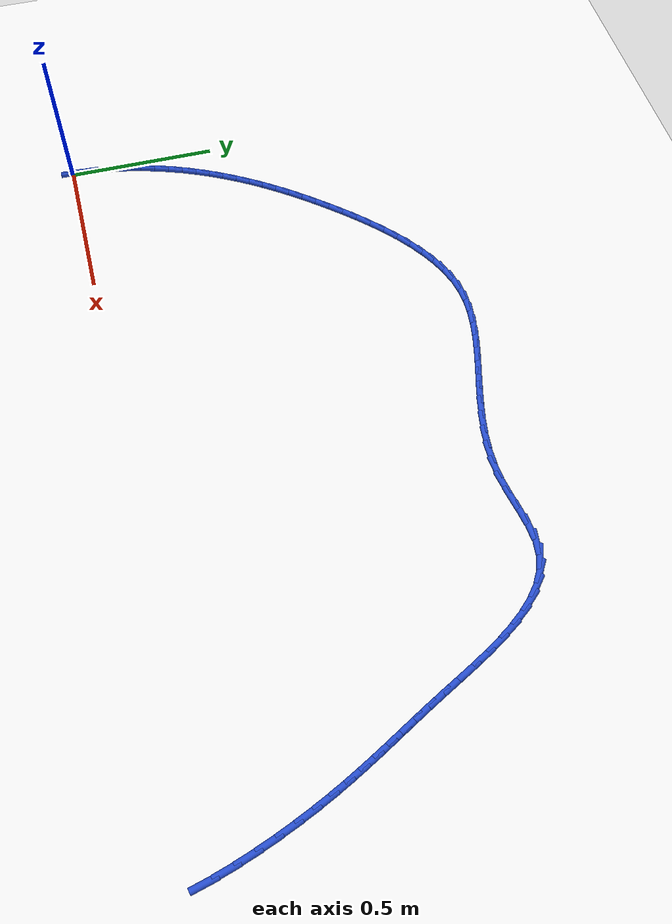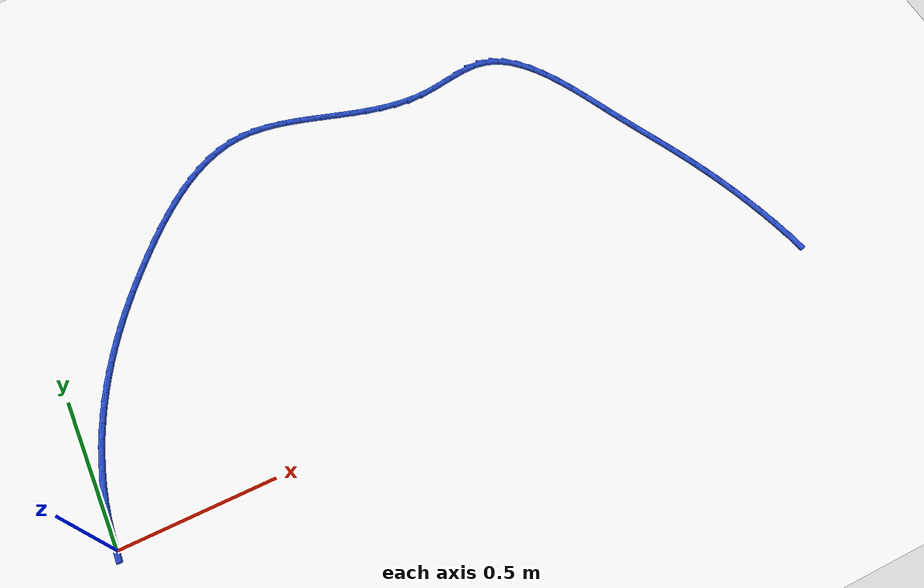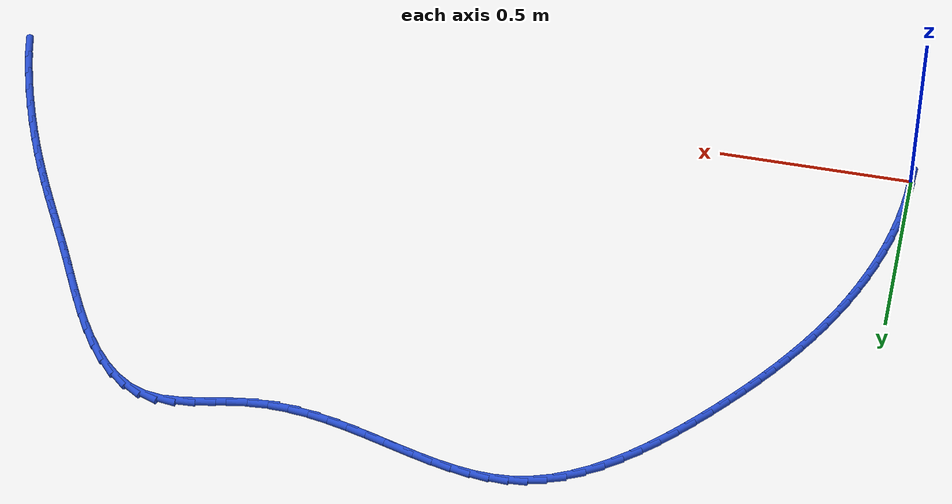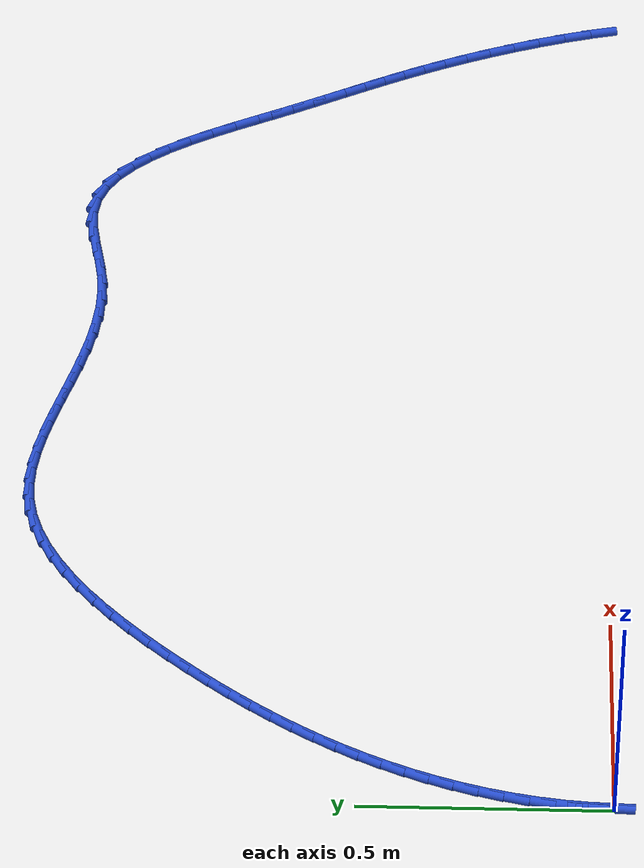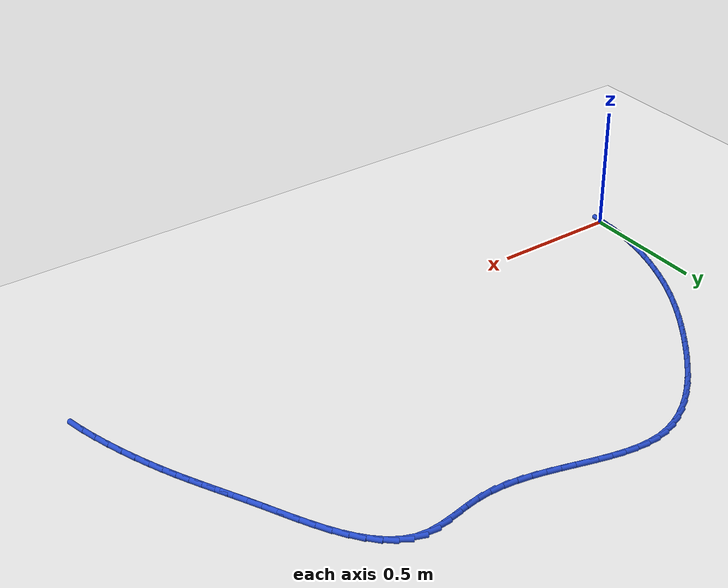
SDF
<sdf version="1.6">
 <world name="default">
  <model name="ground_plane">
   <static>1</static>
   <link name="link">
    <collision name="collision">
     <geometry><plane><normal>0 0 1</normal><size>100 100</size></plane></geometry>
     <surface><friction><ode><mu>100</mu><mu2>50</mu2></ode></friction></surface>
    </collision>
    <visual name="visual">
     <cast_shadows>0</cast_shadows>
     <geometry><plane><normal>0 0 1</normal><size>100 100</size></plane></geometry>
     <material>
      <script><uri>file://media/materials/scripts/gazebo.material</uri><name>Gazebo/WhiteGlow</name></script>
     </material>
    </visual>
   </link>
  </model>
  <model name="line">
   <link name="link_0">
    <pose>5.0306980803327406e-17 -2.7755575615628914e-17 0.01 0 1.57 1.5272388991508121</pose>
    <collision name="collision">
     <geometry><cylinder><radius>0.01</radius><length>0.08</length></cylinder></geometry>
    </collision>
    <visual name="visual">
     <material>
      <script><name>Gazebo/Blue</name><uri>file://media/materials/scripts/gazebo.material</uri></script>
     </material>
     <geometry><cylinder><radius>0.01</radius><length>0.08</length></cylinder></geometry>
    </visual>
   </link>
   <link name="link_1">
    <pose>0.002223918584798443 0.05102486726776829 0.01 0 1.57 1.4775595436881013</pose>
    <collision name="collision">
     <geometry><cylinder><radius>0.01</radius><length>0.08</length></cylinder></geometry>
    </collision>
    <visual name="visual">
     <material>
      <script><name>Gazebo/Blue</name><uri>file://media/materials/scripts/gazebo.material</uri></script>
     </material>
     <geometry><cylinder><radius>0.01</radius><length>0.08</length></cylinder></geometry>
    </visual>
   </link>
   <link name="link_2">
    <pose>0.006962776242531 0.10170355599268953 0.01 0 1.57 1.4298396145848786</pose>
    <collision name="collision">
     <geometry><cylinder><radius>0.01</radius><length>0.08</length></cylinder></geometry>
    </collision>
    <visual name="visual">
     <material>
      <script><name>Gazebo/Blue</name><uri>file://media/materials/scripts/gazebo.material</uri></script>
     </material>
     <geometry><cylinder><radius>0.01</radius><length>0.08</length></cylinder></geometry>
    </visual>
   </link>
   <link name="link_3">
    <pose>0.014092496720489735 0.15194903952423786 0.01 0 1.57 1.3840301126188765</pose>
    <collision name="collision">
     <geometry><cylinder><radius>0.01</radius><length>0.08</length></cylinder></geometry>
    </collision>
    <visual name="visual">
     <material>
      <script><name>Gazebo/Blue</name><uri>file://media/materials/scripts/gazebo.material</uri></script>
     </material>
     <geometry><cylinder><radius>0.01</radius><length>0.08</length></cylinder></geometry>
    </visual>
   </link>
   <link name="link_4">
    <pose>0.02348900376596664 0.2016742912118874 0.01 0 1.57 1.3400521082369103</pose>
    <collision name="collision">
     <geometry><cylinder><radius>0.01</radius><length>0.08</length></cylinder></geometry>
    </collision>
    <visual name="visual">
     <material>
      <script><name>Gazebo/Blue</name><uri>file://media/materials/scripts/gazebo.material</uri></script>
     </material>
     <geometry><cylinder><radius>0.01</radius><length>0.08</length></cylinder></geometry>
    </visual>
   </link>
   <link name="link_5">
    <pose>0.03502822112625369 0.25079228440511236 0.01 0 1.57 1.2978026913553944</pose>
    <collision name="collision">
     <geometry><cylinder><radius>0.01</radius><length>0.08</length></cylinder></geometry>
    </collision>
    <visual name="visual">
     <material>
      <script><name>Gazebo/Blue</name><uri>file://media/materials/scripts/gazebo.material</uri></script>
     </material>
     <geometry><cylinder><radius>0.01</radius><length>0.08</length></cylinder></geometry>
    </visual>
   </link>
   <link name="link_6">
    <pose>0.04858607254864292 0.2992159924533869 0.01 0 1.57 1.2571600773190508</pose>
    <collision name="collision">
     <geometry><cylinder><radius>0.01</radius><length>0.08</length></cylinder></geometry>
    </collision>
    <visual name="visual">
     <material>
      <script><name>Gazebo/Blue</name><uri>file://media/materials/scripts/gazebo.material</uri></script>
     </material>
     <geometry><cylinder><radius>0.01</radius><length>0.08</length></cylinder></geometry>
    </visual>
   </link>
   <link name="link_7">
    <pose>0.06403848178042629 0.3468583887061852 0.01 0 1.57 1.2179877338784888</pose>
    <collision name="collision">
     <geometry><cylinder><radius>0.01</radius><length>0.08</length></cylinder></geometry>
    </collision>
    <visual name="visual">
     <material>
      <script><name>Gazebo/Blue</name><uri>file://media/materials/scripts/gazebo.material</uri></script>
     </material>
     <geometry><cylinder><radius>0.01</radius><length>0.08</length></cylinder></geometry>
    </visual>
   </link>
   <link name="link_8">
    <pose>0.08126137256889585 0.39363244651298135 0.01 0 1.57 1.1801067135373107</pose>
    <collision name="collision">
     <geometry><cylinder><radius>0.01</radius><length>0.08</length></cylinder></geometry>
    </collision>
    <visual name="visual">
     <material>
      <script><name>Gazebo/Blue</name><uri>file://media/materials/scripts/gazebo.material</uri></script>
     </material>
     <geometry><cylinder><radius>0.01</radius><length>0.08</length></cylinder></geometry>
    </visual>
   </link>
   <link name="link_9">
    <pose>0.10013675700099565 0.4394619173120163 0.01 0 1.57 1.1431740605714313</pose>
    <collision name="collision">
     <geometry><cylinder><radius>0.01</radius><length>0.08</length></cylinder></geometry>
    </collision>
    <visual name="visual">
     <material>
      <script><name>Gazebo/Blue</name><uri>file://media/materials/scripts/gazebo.material</uri></script>
     </material>
     <geometry><cylinder><radius>0.01</radius><length>0.08</length></cylinder></geometry>
    </visual>
   </link>
   <link name="link_10">
    <pose>0.12060606583139054 0.48437574044359927 0.01 0 1.57 1.1072401756715553</pose>
    <collision name="collision">
     <geometry><cylinder><radius>0.01</radius><length>0.08</length></cylinder></geometry>
    </collision>
    <visual name="visual">
     <material>
      <script><name>Gazebo/Blue</name><uri>file://media/materials/scripts/gazebo.material</uri></script>
     </material>
     <geometry><cylinder><radius>0.01</radius><length>0.08</length></cylinder></geometry>
    </visual>
   </link>
   <link name="link_11">
    <pose>0.14264428056418202 0.5284622495946565 0.01 0 1.57 1.0725524328225868</pose>
    <collision name="collision">
     <geometry><cylinder><radius>0.01</radius><length>0.08</length></cylinder></geometry>
    </collision>
    <visual name="visual">
     <material>
      <script><name>Gazebo/Blue</name><uri>file://media/materials/scripts/gazebo.material</uri></script>
     </material>
     <geometry><cylinder><radius>0.01</radius><length>0.08</length></cylinder></geometry>
    </visual>
   </link>
   <link name="link_12">
    <pose>0.16622676152050464 0.5718104490657525 0.01 0 1.57 1.039331357504351</pose>
    <collision name="collision">
     <geometry><cylinder><radius>0.01</radius><length>0.08</length></cylinder></geometry>
    </collision>
    <visual name="visual">
     <material>
      <script><name>Gazebo/Blue</name><uri>file://media/materials/scripts/gazebo.material</uri></script>
     </material>
     <geometry><cylinder><radius>0.01</radius><length>0.08</length></cylinder></geometry>
    </visual>
   </link>
   <link name="link_13">
    <pose>0.19132886902149296 0.614509343157452 0.01 0 1.57 1.0077643335935016</pose>
    <collision name="collision">
     <geometry><cylinder><radius>0.01</radius><length>0.08</length></cylinder></geometry>
    </collision>
    <visual name="visual">
     <material>
      <script><name>Gazebo/Blue</name><uri>file://media/materials/scripts/gazebo.material</uri></script>
     </material>
     <geometry><cylinder><radius>0.01</radius><length>0.08</length></cylinder></geometry>
    </visual>
   </link>
   <link name="link_14">
    <pose>0.21792596338828174 0.6566479361703199 0.01 0 1.57 0.9780032792882845</pose>
    <collision name="collision">
     <geometry><cylinder><radius>0.01</radius><length>0.08</length></cylinder></geometry>
    </collision>
    <visual name="visual">
     <material>
      <script><name>Gazebo/Blue</name><uri>file://media/materials/scripts/gazebo.material</uri></script>
     </material>
     <geometry><cylinder><radius>0.01</radius><length>0.08</length></cylinder></geometry>
    </visual>
   </link>
   <link name="link_15">
    <pose>0.24599340494200544 0.6983152324049209 0.01 0 1.57 0.9501642488551912</pose>
    <collision name="collision">
     <geometry><cylinder><radius>0.01</radius><length>0.08</length></cylinder></geometry>
    </collision>
    <visual name="visual">
     <material>
      <script><name>Gazebo/Blue</name><uri>file://media/materials/scripts/gazebo.material</uri></script>
     </material>
     <geometry><cylinder><radius>0.01</radius><length>0.08</length></cylinder></geometry>
    </visual>
   </link>
   <link name="link_16">
    <pose>0.27550655400379875 0.73960023616182 0.01 0 1.57 0.9243286719294354</pose>
    <collision name="collision">
     <geometry><cylinder><radius>0.01</radius><length>0.08</length></cylinder></geometry>
    </collision>
    <visual name="visual">
     <material>
      <script><name>Gazebo/Blue</name><uri>file://media/materials/scripts/gazebo.material</uri></script>
     </material>
     <geometry><cylinder><radius>0.01</radius><length>0.08</length></cylinder></geometry>
    </visual>
   </link>
   <link name="link_17">
    <pose>0.3064407708947964 0.7805919517415821 0.01 0 1.57 0.9005458506365052</pose>
    <collision name="collision">
     <geometry><cylinder><radius>0.01</radius><length>0.08</length></cylinder></geometry>
    </collision>
    <visual name="visual">
     <material>
      <script><name>Gazebo/Blue</name><uri>file://media/materials/scripts/gazebo.material</uri></script>
     </material>
     <geometry><cylinder><radius>0.01</radius><length>0.08</length></cylinder></geometry>
    </visual>
   </link>
   <link name="link_18">
    <pose>0.33877141593613286 0.8213793834447715 0.01 0 1.57 0.8788363084535017</pose>
    <collision name="collision">
     <geometry><cylinder><radius>0.01</radius><length>0.08</length></cylinder></geometry>
    </collision>
    <visual name="visual">
     <material>
      <script><name>Gazebo/Blue</name><uri>file://media/materials/scripts/gazebo.material</uri></script>
     </material>
     <geometry><cylinder><radius>0.01</radius><length>0.08</length></cylinder></geometry>
    </visual>
   </link>
   <link name="link_19">
    <pose>0.3724738494489426 0.862051535571953 0.01 0 1.57 0.8582273358059296</pose>
    <collision name="collision">
     <geometry><cylinder><radius>0.01</radius><length>0.08</length></cylinder></geometry>
    </collision>
    <visual name="visual">
     <material>
      <script><name>Gazebo/Blue</name><uri>file://media/materials/scripts/gazebo.material</uri></script>
     </material>
     <geometry><cylinder><radius>0.01</radius><length>0.08</length></cylinder></geometry>
    </visual>
   </link>
   <link name="link_20">
    <pose>0.407519418088347 0.9026132783377154 0.01 0 1.57 0.8335239455667202</pose>
    <collision name="collision">
     <geometry><cylinder><radius>0.01</radius><length>0.08</length></cylinder></geometry>
    </collision>
    <visual name="visual">
     <material>
      <script><name>Gazebo/Blue</name><uri>file://media/materials/scripts/gazebo.material</uri></script>
     </material>
     <geometry><cylinder><radius>0.01</radius><length>0.08</length></cylinder></geometry>
    </visual>
   </link>
   <link name="link_21">
    <pose>0.44385849670834976 0.9426298730523538 0.01 0 1.57 0.8026250250646623</pose>
    <collision name="collision">
     <geometry><cylinder><radius>0.01</radius><length>0.08</length></cylinder></geometry>
    </collision>
    <visual name="visual">
     <material>
      <script><name>Gazebo/Blue</name><uri>file://media/materials/scripts/gazebo.material</uri></script>
     </material>
     <geometry><cylinder><radius>0.01</radius><length>0.08</length></cylinder></geometry>
    </visual>
   </link>
   <link name="link_22">
    <pose>0.48143463312846696 0.9815234733773062 0.01 0 1.57 0.7648076815260989</pose>
    <collision name="collision">
     <geometry><cylinder><radius>0.01</radius><length>0.08</length></cylinder></geometry>
    </collision>
    <visual name="visual">
     <material>
      <script><name>Gazebo/Blue</name><uri>file://media/materials/scripts/gazebo.material</uri></script>
     </material>
     <geometry><cylinder><radius>0.01</radius><length>0.08</length></cylinder></geometry>
    </visual>
   </link>
   <link name="link_23">
    <pose>0.5201913714729116 1.0187161555133943 0.01 0 1.57 0.7190865121437994</pose>
    <collision name="collision">
     <geometry><cylinder><radius>0.01</radius><length>0.08</length></cylinder></geometry>
    </collision>
    <visual name="visual">
     <material>
      <script><name>Gazebo/Blue</name><uri>file://media/materials/scripts/gazebo.material</uri></script>
     </material>
     <geometry><cylinder><radius>0.01</radius><length>0.08</length></cylinder></geometry>
    </visual>
   </link>
   <link name="link_24">
    <pose>0.5600722558658957 1.0536299956614397 0.01 0 1.57 0.6642031032543242</pose>
    <collision name="collision">
     <geometry><cylinder><radius>0.01</radius><length>0.08</length></cylinder></geometry>
    </collision>
    <visual name="visual">
     <material>
      <script><name>Gazebo/Blue</name><uri>file://media/materials/scripts/gazebo.material</uri></script>
     </material>
     <geometry><cylinder><radius>0.01</radius><length>0.08</length></cylinder></geometry>
    </visual>
   </link>
   <link name="link_25">
    <pose>0.601020830431632 1.0856870700222638 0.01 0 1.57 0.5986372614404099</pose>
    <collision name="collision">
     <geometry><cylinder><radius>0.01</radius><length>0.08</length></cylinder></geometry>
    </collision>
    <visual name="visual">
     <material>
      <script><name>Gazebo/Blue</name><uri>file://media/materials/scripts/gazebo.material</uri></script>
     </material>
     <geometry><cylinder><radius>0.01</radius><length>0.08</length></cylinder></geometry>
    </visual>
   </link>
   <link name="link_26">
    <pose>0.6429806392943327 1.114309454796688 0.01 0 1.57 0.5206756706613384</pose>
    <collision name="collision">
     <geometry><cylinder><radius>0.01</radius><length>0.08</length></cylinder></geometry>
    </collision>
    <visual name="visual">
     <material>
      <script><name>Gazebo/Blue</name><uri>file://media/materials/scripts/gazebo.material</uri></script>
     </material>
     <geometry><cylinder><radius>0.01</radius><length>0.08</length></cylinder></geometry>
    </visual>
   </link>
   <link name="link_27">
    <pose>0.6858952265782101 1.1389192261855339 0.01 0 1.57 0.42859819823669854</pose>
    <collision name="collision">
     <geometry><cylinder><radius>0.01</radius><length>0.08</length></cylinder></geometry>
    </collision>
    <visual name="visual">
     <material>
      <script><name>Gazebo/Blue</name><uri>file://media/materials/scripts/gazebo.material</uri></script>
     </material>
     <geometry><cylinder><radius>0.01</radius><length>0.08</length></cylinder></geometry>
    </visual>
   </link>
   <link name="link_28">
    <pose>0.7297081364074769 1.1589384603896227 0.01 0 1.57 0.32106207036278145</pose>
    <collision name="collision">
     <geometry><cylinder><radius>0.01</radius><length>0.08</length></cylinder></geometry>
    </collision>
    <visual name="visual">
     <material>
      <script><name>Gazebo/Blue</name><uri>file://media/materials/scripts/gazebo.material</uri></script>
     </material>
     <geometry><cylinder><radius>0.01</radius><length>0.08</length></cylinder></geometry>
    </visual>
   </link>
   <link name="link_29">
    <pose>0.7743629129063457 1.1737892336097768 0.01 0 1.57 0.19778036031494722</pose>
    <collision name="collision">
     <geometry><cylinder><radius>0.01</radius><length>0.08</length></cylinder></geometry>
    </collision>
    <visual name="visual">
     <material>
      <script><name>Gazebo/Blue</name><uri>file://media/materials/scripts/gazebo.material</uri></script>
     </material>
     <geometry><cylinder><radius>0.01</radius><length>0.08</length></cylinder></geometry>
    </visual>
   </link>
   <link name="link_30">
    <pose>0.8198031244990173 1.1828954621599586 0.01 0 1.57 0.06905127401093203</pose>
    <collision name="collision">
     <geometry><cylinder><radius>0.01</radius><length>0.08</length></cylinder></geometry>
    </collision>
    <visual name="visual">
     <material>
      <script><name>Gazebo/Blue</name><uri>file://media/materials/scripts/gazebo.material</uri></script>
     </material>
     <geometry><cylinder><radius>0.01</radius><length>0.08</length></cylinder></geometry>
    </visual>
   </link>
   <link name="link_31">
    <pose>0.8659777261118524 1.1860889544496456 0.01 0 1.57 -0.04197397387465293</pose>
    <collision name="collision">
     <geometry><cylinder><radius>0.01</radius><length>0.08</length></cylinder></geometry>
    </collision>
    <visual name="visual">
     <material>
      <script><name>Gazebo/Blue</name><uri>file://media/materials/scripts/gazebo.material</uri></script>
     </material>
     <geometry><cylinder><radius>0.01</radius><length>0.08</length></cylinder></geometry>
    </visual>
   </link>
   <link name="link_32">
    <pose>0.9128478081291671 1.1841204746836906 0.01 0 1.57 -0.13083217703381197</pose>
    <collision name="collision">
     <geometry><cylinder><radius>0.01</radius><length>0.08</length></cylinder></geometry>
    </collision>
    <visual name="visual">
     <material>
      <script><name>Gazebo/Blue</name><uri>file://media/materials/scripts/gazebo.material</uri></script>
     </material>
     <geometry><cylinder><radius>0.01</radius><length>0.08</length></cylinder></geometry>
    </visual>
   </link>
   <link name="link_33">
    <pose>0.9603761213020608 1.1778665181010528 0.01 0 1.57 -0.19805606097018524</pose>
    <collision name="collision">
     <geometry><cylinder><radius>0.01</radius><length>0.08</length></cylinder></geometry>
    </collision>
    <visual name="visual">
     <material>
      <script><name>Gazebo/Blue</name><uri>file://media/materials/scripts/gazebo.material</uri></script>
     </material>
     <geometry><cylinder><radius>0.01</radius><length>0.08</length></cylinder></geometry>
    </visual>
   </link>
   <link name="link_34">
    <pose>1.008525416381634 1.1682035799406898 0.01 0 1.57 -0.2452136403749122</pose>
    <collision name="collision">
     <geometry><cylinder><radius>0.01</radius><length>0.08</length></cylinder></geometry>
    </collision>
    <visual name="visual">
     <material>
      <script><name>Gazebo/Blue</name><uri>file://media/materials/scripts/gazebo.material</uri></script>
     </material>
     <geometry><cylinder><radius>0.01</radius><length>0.08</length></cylinder></geometry>
    </visual>
   </link>
   <link name="link_35">
    <pose>1.0572584441189854 1.1560081554415593 0.01 0 1.57 -0.274008600614039</pose>
    <collision name="collision">
     <geometry><cylinder><radius>0.01</radius><length>0.08</length></cylinder></geometry>
    </collision>
    <visual name="visual">
     <material>
      <script><name>Gazebo/Blue</name><uri>file://media/materials/scripts/gazebo.material</uri></script>
     </material>
     <geometry><cylinder><radius>0.01</radius><length>0.08</length></cylinder></geometry>
    </visual>
   </link>
   <link name="link_36">
    <pose>1.106537955265216 1.1421567398426198 0.01 0 1.57 -0.28581412066753836</pose>
    <collision name="collision">
     <geometry><cylinder><radius>0.01</radius><length>0.08</length></cylinder></geometry>
    </collision>
    <visual name="visual">
     <material>
      <script><name>Gazebo/Blue</name><uri>file://media/materials/scripts/gazebo.material</uri></script>
     </material>
     <geometry><cylinder><radius>0.01</radius><length>0.08</length></cylinder></geometry>
    </visual>
   </link>
   <link name="link_37">
    <pose>1.156326700571424 1.1275258283828284 0.01 0 1.57 -0.2814919471599445</pose>
    <collision name="collision">
     <geometry><cylinder><radius>0.01</radius><length>0.08</length></cylinder></geometry>
    </collision>
    <visual name="visual">
     <material>
      <script><name>Gazebo/Blue</name><uri>file://media/materials/scripts/gazebo.material</uri></script>
     </material>
     <geometry><cylinder><radius>0.01</radius><length>0.08</length></cylinder></geometry>
    </visual>
   </link>
   <link name="link_38">
    <pose>1.2065874307887097 1.1129919163011437 0.01 0 1.57 -0.26136883156408985</pose>
    <collision name="collision">
     <geometry><cylinder><radius>0.01</radius><length>0.08</length></cylinder></geometry>
    </collision>
    <visual name="visual">
     <material>
      <script><name>Gazebo/Blue</name><uri>file://media/materials/scripts/gazebo.material</uri></script>
     </material>
     <geometry><cylinder><radius>0.01</radius><length>0.08</length></cylinder></geometry>
    </visual>
   </link>
   <link name="link_39">
    <pose>1.257282896668173 1.0994314988365235 0.01 0 1.57 -0.225307016189881</pose>
    <collision name="collision">
     <geometry><cylinder><radius>0.01</radius><length>0.08</length></cylinder></geometry>
    </collision>
    <visual name="visual">
     <material>
      <script><name>Gazebo/Blue</name><uri>file://media/materials/scripts/gazebo.material</uri></script>
     </material>
     <geometry><cylinder><radius>0.01</radius><length>0.08</length></cylinder></geometry>
    </visual>
   </link>
   <link name="link_40">
    <pose>1.3083758489609136 1.0877210712279257 0.01 0 1.57 -0.17286159300284804</pose>
    <collision name="collision">
     <geometry><cylinder><radius>0.01</radius><length>0.08</length></cylinder></geometry>
    </collision>
    <visual name="visual">
     <material>
      <script><name>Gazebo/Blue</name><uri>file://media/materials/scripts/gazebo.material</uri></script>
     </material>
     <geometry><cylinder><radius>0.01</radius><length>0.08</length></cylinder></geometry>
    </visual>
   </link>
   <link name="link_41">
    <pose>1.3598290384180318 1.0787371287143084 0.01 0 1.57 -0.10355561114296845</pose>
    <collision name="collision">
     <geometry><cylinder><radius>0.01</radius><length>0.08</length></cylinder></geometry>
    </collision>
    <visual name="visual">
     <material>
      <script><name>Gazebo/Blue</name><uri>file://media/materials/scripts/gazebo.material</uri></script>
     </material>
     <geometry><cylinder><radius>0.01</radius><length>0.08</length></cylinder></geometry>
    </visual>
   </link>
   <link name="link_42">
    <pose>1.411605215790626 1.0733561665346292 0.01 0 1.57 -0.017313932973075225</pose>
    <collision name="collision">
     <geometry><cylinder><radius>0.01</radius><length>0.08</length></cylinder></geometry>
    </collision>
    <visual name="visual">
     <material>
      <script><name>Gazebo/Blue</name><uri>file://media/materials/scripts/gazebo.material</uri></script>
     </material>
     <geometry><cylinder><radius>0.01</radius><length>0.08</length></cylinder></geometry>
    </visual>
   </link>
   <link name="link_43">
    <pose>1.4636671318297965 1.0724546799278465 0.01 0 1.57 0.08406274976963503</pose>
    <collision name="collision">
     <geometry><cylinder><radius>0.01</radius><length>0.08</length></cylinder></geometry>
    </collision>
    <visual name="visual">
     <material>
      <script><name>Gazebo/Blue</name><uri>file://media/materials/scripts/gazebo.material</uri></script>
     </material>
     <geometry><cylinder><radius>0.01</radius><length>0.08</length></cylinder></geometry>
    </visual>
   </link>
   <link name="link_44">
    <pose>1.5159696839445798 1.0768617621219103 0.01 0 1.57 0.1667311757712632</pose>
    <collision name="collision">
     <geometry><cylinder><radius>0.01</radius><length>0.08</length></cylinder></geometry>
    </collision>
    <visual name="visual">
     <material>
      <script><name>Gazebo/Blue</name><uri>file://media/materials/scripts/gazebo.material</uri></script>
     </material>
     <geometry><cylinder><radius>0.01</radius><length>0.08</length></cylinder></geometry>
    </visual>
   </link>
   <link name="link_45">
    <pose>1.5681763979310692 1.085647815548833 0.01 0 1.57 0.19210658688101442</pose>
    <collision name="collision">
     <geometry><cylinder><radius>0.01</radius><length>0.08</length></cylinder></geometry>
    </collision>
    <visual name="visual">
     <material>
      <script><name>Gazebo/Blue</name><uri>file://media/materials/scripts/gazebo.material</uri></script>
     </material>
     <geometry><cylinder><radius>0.01</radius><length>0.08</length></cylinder></geometry>
    </visual>
   </link>
   <link name="link_46">
    <pose>1.6195801630850977 1.0956461166726625 0.01 0 1.57 0.15708765076795267</pose>
    <collision name="collision">
     <geometry><cylinder><radius>0.01</radius><length>0.08</length></cylinder></geometry>
    </collision>
    <visual name="visual">
     <material>
      <script><name>Gazebo/Blue</name><uri>file://media/materials/scripts/gazebo.material</uri></script>
     </material>
     <geometry><cylinder><radius>0.01</radius><length>0.08</length></cylinder></geometry>
    </visual>
   </link>
   <link name="link_47">
    <pose>1.6694498740945471 1.1035451128310498 0.01 0 1.57 0.052219303408299445</pose>
    <collision name="collision">
     <geometry><cylinder><radius>0.01</radius><length>0.08</length></cylinder></geometry>
    </collision>
    <visual name="visual">
     <material>
      <script><name>Gazebo/Blue</name><uri>file://media/materials/scripts/gazebo.material</uri></script>
     </material>
     <geometry><cylinder><radius>0.01</radius><length>0.08</length></cylinder></geometry>
    </visual>
   </link>
   <link name="link_48">
    <pose>1.7170544256472982 1.1060332513616447 0.01 0 1.57 -0.1376543515479821</pose>
    <collision name="collision">
     <geometry><cylinder><radius>0.01</radius><length>0.08</length></cylinder></geometry>
    </collision>
    <visual name="visual">
     <material>
      <script><name>Gazebo/Blue</name><uri>file://media/materials/scripts/gazebo.material</uri></script>
     </material>
     <geometry><cylinder><radius>0.01</radius><length>0.08</length></cylinder></geometry>
    </visual>
   </link>
   <link name="link_49">
    <pose>1.7616743188051753 1.0998520374624046 0.01 0 1.57 -0.37274357385876616</pose>
    <collision name="collision">
     <geometry><cylinder><radius>0.01</radius><length>0.08</length></cylinder></geometry>
    </collision>
    <visual name="visual">
     <material>
      <script><name>Gazebo/Blue</name><uri>file://media/materials/scripts/gazebo.material</uri></script>
     </material>
     <geometry><cylinder><radius>0.01</radius><length>0.08</length></cylinder></geometry>
    </visual>
   </link>
   <link name="link_50">
    <pose>1.8030152614643125 1.0836867845289722 0.01 0 1.57 -0.5783365354380466</pose>
    <collision name="collision">
     <geometry><cylinder><radius>0.01</radius><length>0.08</length></cylinder></geometry>
    </collision>
    <visual name="visual">
     <material>
      <script><name>Gazebo/Blue</name><uri>file://media/materials/scripts/gazebo.material</uri></script>
     </material>
     <geometry><cylinder><radius>0.01</radius><length>0.08</length></cylinder></geometry>
    </visual>
   </link>
   <link name="link_51">
    <pose>1.8413207374968203 1.0586812174082412 0.01 0 1.57 -0.7413159635463125</pose>
    <collision name="collision">
     <geometry><cylinder><radius>0.01</radius><length>0.08</length></cylinder></geometry>
    </collision>
    <visual name="visual">
     <material>
      <script><name>Gazebo/Blue</name><uri>file://media/materials/scripts/gazebo.material</uri></script>
     </material>
     <geometry><cylinder><radius>0.01</radius><length>0.08</length></cylinder></geometry>
    </visual>
   </link>
   <link name="link_52">
    <pose>1.8768687410049314 1.026136822447635 0.01 0 1.57 -0.8647467379044604</pose>
    <collision name="collision">
     <geometry><cylinder><radius>0.01</radius><length>0.08</length></cylinder></geometry>
    </collision>
    <visual name="visual">
     <material>
      <script><name>Gazebo/Blue</name><uri>file://media/materials/scripts/gazebo.material</uri></script>
     </material>
     <geometry><cylinder><radius>0.01</radius><length>0.08</length></cylinder></geometry>
    </visual>
   </link>
   <link name="link_53">
    <pose>1.9099372660908787 0.9873550859945773 0.01 0 1.57 -0.9560178994460585</pose>
    <collision name="collision">
     <geometry><cylinder><radius>0.01</radius><length>0.08</length></cylinder></geometry>
    </collision>
    <visual name="visual">
     <material>
      <script><name>Gazebo/Blue</name><uri>file://media/materials/scripts/gazebo.material</uri></script>
     </material>
     <geometry><cylinder><radius>0.01</radius><length>0.08</length></cylinder></geometry>
    </visual>
   </link>
   <link name="link_54">
    <pose>1.9408043068568945 0.9436374943964908 0.01 0 1.57 -1.0221509611254789</pose>
    <collision name="collision">
     <geometry><cylinder><radius>0.01</radius><length>0.08</length></cylinder></geometry>
    </collision>
    <visual name="visual">
     <material>
      <script><name>Gazebo/Blue</name><uri>file://media/materials/scripts/gazebo.material</uri></script>
     </material>
     <geometry><cylinder><radius>0.01</radius><length>0.08</length></cylinder></geometry>
    </visual>
   </link>
   <link name="link_55">
    <pose>1.9697478574052119 0.8962855340008001 0.01 0 1.57 -1.0683953055606403</pose>
    <collision name="collision">
     <geometry><cylinder><radius>0.01</radius><length>0.08</length></cylinder></geometry>
    </collision>
    <visual name="visual">
     <material>
      <script><name>Gazebo/Blue</name><uri>file://media/materials/scripts/gazebo.material</uri></script>
     </material>
     <geometry><cylinder><radius>0.01</radius><length>0.08</length></cylinder></geometry>
    </visual>
   </link>
   <link name="link_56">
    <pose>1.997045911838063 0.8466006911549279 0.01 0 1.57 -1.0981599629457697</pose>
    <collision name="collision">
     <geometry><cylinder><radius>0.01</radius><length>0.08</length></cylinder></geometry>
    </collision>
    <visual name="visual">
     <material>
      <script><name>Gazebo/Blue</name><uri>file://media/materials/scripts/gazebo.material</uri></script>
     </material>
     <geometry><cylinder><radius>0.01</radius><length>0.08</length></cylinder></geometry>
    </visual>
   </link>
   <link name="link_57">
    <pose>2.022976464257681 0.7958844522062977 0.01 0 1.57 -1.113225469356338</pose>
    <collision name="collision">
     <geometry><cylinder><radius>0.01</radius><length>0.08</length></cylinder></geometry>
    </collision>
    <visual name="visual">
     <material>
      <script><name>Gazebo/Blue</name><uri>file://media/materials/scripts/gazebo.material</uri></script>
     </material>
     <geometry><cylinder><radius>0.01</radius><length>0.08</length></cylinder></geometry>
    </visual>
   </link>
   <link name="link_58">
    <pose>2.047817508766299 0.7454383035023329 0.01 0 1.57 -1.1138521939577677</pose>
    <collision name="collision">
     <geometry><cylinder><radius>0.01</radius><length>0.08</length></cylinder></geometry>
    </collision>
    <visual name="visual">
     <material>
      <script><name>Gazebo/Blue</name><uri>file://media/materials/scripts/gazebo.material</uri></script>
     </material>
     <geometry><cylinder><radius>0.01</radius><length>0.08</length></cylinder></geometry>
    </visual>
   </link>
   <link name="link_59">
    <pose>2.071846967642852 0.6965630240749457 0.01 0 1.57 -1.1036554198427984</pose>
    <collision name="collision">
     <geometry><cylinder><radius>0.01</radius><length>0.08</length></cylinder></geometry>
    </collision>
    <visual name="visual">
     <material>
      <script><name>Gazebo/Blue</name><uri>file://media/materials/scripts/gazebo.material</uri></script>
     </material>
     <geometry><cylinder><radius>0.01</radius><length>0.08</length></cylinder></geometry>
    </visual>
   </link>
   <link name="link_60">
    <pose>2.0952937027569027 0.6500762462642672 0.01 0 1.57 -1.095450552324791</pose>
    <collision name="collision">
     <geometry><cylinder><radius>0.01</radius><length>0.08</length></cylinder></geometry>
    </collision>
    <visual name="visual">
     <material>
      <script><name>Gazebo/Blue</name><uri>file://media/materials/scripts/gazebo.material</uri></script>
     </material>
     <geometry><cylinder><radius>0.01</radius><length>0.08</length></cylinder></geometry>
    </visual>
   </link>
   <link name="link_61">
    <pose>2.1182521324573647 0.6054716032211329 0.01 0 1.57 -1.0922589274482102</pose>
    <collision name="collision">
     <geometry><cylinder><radius>0.01</radius><length>0.08</length></cylinder></geometry>
    </collision>
    <visual name="visual">
     <material>
      <script><name>Gazebo/Blue</name><uri>file://media/materials/scripts/gazebo.material</uri></script>
     </material>
     <geometry><cylinder><radius>0.01</radius><length>0.08</length></cylinder></geometry>
    </visual>
   </link>
   <link name="link_62">
    <pose>2.14079385123869 0.5620179588798645 0.01 0 1.57 -1.0945928406013012</pose>
    <collision name="collision">
     <geometry><cylinder><radius>0.01</radius><length>0.08</length></cylinder></geometry>
    </collision>
    <visual name="visual">
     <material>
      <script><name>Gazebo/Blue</name><uri>file://media/materials/scripts/gazebo.material</uri></script>
     </material>
     <geometry><cylinder><radius>0.01</radius><length>0.08</length></cylinder></geometry>
    </visual>
   </link>
   <link name="link_63">
    <pose>2.162990453595331 0.5189841771747844 0.01 0 1.57 -1.1025350777787553</pose>
    <collision name="collision">
     <geometry><cylinder><radius>0.01</radius><length>0.08</length></cylinder></geometry>
    </collision>
    <visual name="visual">
     <material>
      <script><name>Gazebo/Blue</name><uri>file://media/materials/scripts/gazebo.material</uri></script>
     </material>
     <geometry><cylinder><radius>0.01</radius><length>0.08</length></cylinder></geometry>
    </visual>
   </link>
   <link name="link_64">
    <pose>2.1849135340217405 0.475639122040214 0.01 0 1.57 -1.115702284388976</pose>
    <collision name="collision">
     <geometry><cylinder><radius>0.01</radius><length>0.08</length></cylinder></geometry>
    </collision>
    <visual name="visual">
     <material>
      <script><name>Gazebo/Blue</name><uri>file://media/materials/scripts/gazebo.material</uri></script>
     </material>
     <geometry><cylinder><radius>0.01</radius><length>0.08</length></cylinder></geometry>
    </visual>
   </link>
   <link name="link_65">
    <pose>2.2066346870123676 0.431251657410475 0.01 0 1.57 -1.1332975785269375</pose>
    <collision name="collision">
     <geometry><cylinder><radius>0.01</radius><length>0.08</length></cylinder></geometry>
    </collision>
    <visual name="visual">
     <material>
      <script><name>Gazebo/Blue</name><uri>file://media/materials/scripts/gazebo.material</uri></script>
     </material>
     <geometry><cylinder><radius>0.01</radius><length>0.08</length></cylinder></geometry>
    </visual>
   </link>
   <link name="link_66">
    <pose>2.228225507061668 0.3850906472198897 0.01 0 1.57 -1.1542390359426522</pose>
    <collision name="collision">
     <geometry><cylinder><radius>0.01</radius><length>0.08</length></cylinder></geometry>
    </collision>
    <visual name="visual">
     <material>
      <script><name>Gazebo/Blue</name><uri>file://media/materials/scripts/gazebo.material</uri></script>
     </material>
     <geometry><cylinder><radius>0.01</radius><length>0.08</length></cylinder></geometry>
    </visual>
   </link>
   <link name="link_67">
    <pose>2.249757440930759 0.33642536569932047 0.01 0 1.57 -1.1770635725032588</pose>
    <collision name="collision">
     <geometry><cylinder><radius>0.01</radius><length>0.08</length></cylinder></geometry>
    </collision>
    <visual name="visual">
     <material>
      <script><name>Gazebo/Blue</name><uri>file://media/materials/scripts/gazebo.material</uri></script>
     </material>
     <geometry><cylinder><radius>0.01</radius><length>0.08</length></cylinder></geometry>
    </visual>
   </link>
   <link name="link_68">
    <pose>2.2711966729316635 0.2848174301692055 0.01 0 1.57 -1.2006853644421709</pose>
    <collision name="collision">
     <geometry><cylinder><radius>0.01</radius><length>0.08</length></cylinder></geometry>
    </collision>
    <visual name="visual">
     <material>
      <script><name>Gazebo/Blue</name><uri>file://media/materials/scripts/gazebo.material</uri></script>
     </material>
     <geometry><cylinder><radius>0.01</radius><length>0.08</length></cylinder></geometry>
    </visual>
   </link>
   <link name="link_69">
    <pose>2.292219256159351 0.230634233011282 0.01 0 1.57 -1.2255367192810869</pose>
    <collision name="collision">
     <geometry><cylinder><radius>0.01</radius><length>0.08</length></cylinder></geometry>
    </collision>
    <visual name="visual">
     <material>
      <script><name>Gazebo/Blue</name><uri>file://media/materials/scripts/gazebo.material</uri></script>
     </material>
     <geometry><cylinder><radius>0.01</radius><length>0.08</length></cylinder></geometry>
    </visual>
   </link>
   <link name="link_70">
    <pose>2.3124516849807253 0.1743808049750319 0.01 0 1.57 -1.2522262469200827</pose>
    <collision name="collision">
     <geometry><cylinder><radius>0.01</radius><length>0.08</length></cylinder></geometry>
    </collision>
    <visual name="visual">
     <material>
      <script><name>Gazebo/Blue</name><uri>file://media/materials/scripts/gazebo.material</uri></script>
     </material>
     <geometry><cylinder><radius>0.01</radius><length>0.08</length></cylinder></geometry>
    </visual>
   </link>
   <link name="link_71">
    <pose>2.331520453762689 0.11656217680993676 0.01 0 1.57 -1.281398146462841</pose>
    <collision name="collision">
     <geometry><cylinder><radius>0.01</radius><length>0.08</length></cylinder></geometry>
    </collision>
    <visual name="visual">
     <material>
      <script><name>Gazebo/Blue</name><uri>file://media/materials/scripts/gazebo.material</uri></script>
     </material>
     <geometry><cylinder><radius>0.01</radius><length>0.08</length></cylinder></geometry>
    </visual>
   </link>
   <link name="link_72">
    <pose>2.3490520568721465 0.05768337926547948 0.01 0 1.57 -1.3137807053818664</pose>
    <collision name="collision">
     <geometry><cylinder><radius>0.01</radius><length>0.08</length></cylinder></geometry>
    </collision>
    <visual name="visual">
     <material>
      <script><name>Gazebo/Blue</name><uri>file://media/materials/scripts/gazebo.material</uri></script>
     </material>
     <geometry><cylinder><radius>0.01</radius><length>0.08</length></cylinder></geometry>
    </visual>
   </link>
   <link name="link_73">
    <pose>2.364672988675998 -0.001750556908858586 0.01 0 1.57 -1.3502365484249814</pose>
    <collision name="collision">
     <geometry><cylinder><radius>0.01</radius><length>0.08</length></cylinder></geometry>
    </collision>
    <visual name="visual">
     <material>
      <script><name>Gazebo/Blue</name><uri>file://media/materials/scripts/gazebo.material</uri></script>
     </material>
     <geometry><cylinder><radius>0.01</radius><length>0.08</length></cylinder></geometry>
    </visual>
   </link>
   <link name="link_150">
    <pose>3.469446951953614e-17 1.8041124150158794e-16 0.01 0 1.57 1.526930428966365</pose>
    <collision name="collision">
     <geometry><cylinder><radius>0.01</radius><length>0.08</length></cylinder></geometry>
    </collision>
    <visual name="visual">
     <material>
      <script><name>Gazebo/Blue</name><uri>file://media/materials/scripts/gazebo.material</uri></script>
     </material>
     <geometry><cylinder><radius>0.01</radius><length>0.08</length></cylinder></geometry>
    </visual>
   </link>
   <link name="link_151">
    <pose>0.002238315157758212 0.050993583085404276 0.01 0 1.57 1.5269304289663654</pose>
    <collision name="collision">
     <geometry><cylinder><radius>0.01</radius><length>0.08</length></cylinder></geometry>
    </collision>
    <visual name="visual">
     <material>
      <script><name>Gazebo/Blue</name><uri>file://media/materials/scripts/gazebo.material</uri></script>
     </material>
     <geometry><cylinder><radius>0.01</radius><length>0.08</length></cylinder></geometry>
    </visual>
   </link>
  </model>
 </world>
</sdf>
